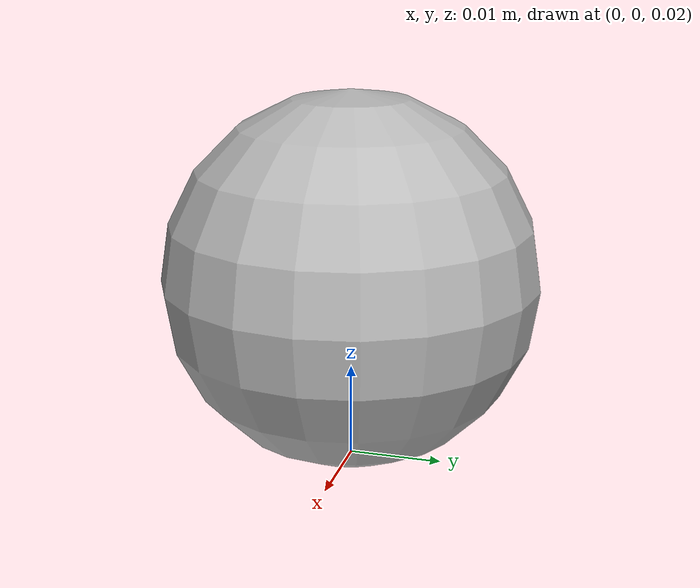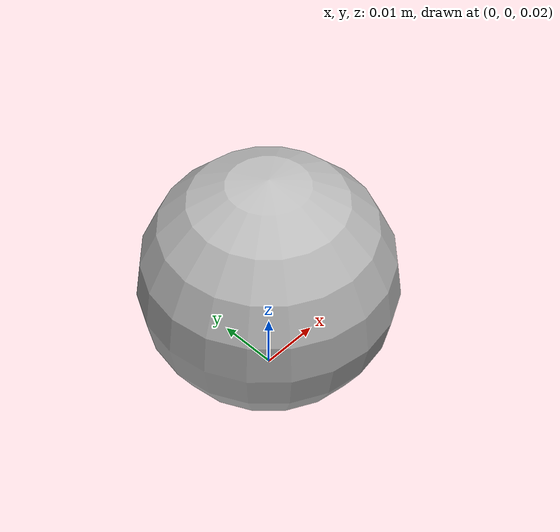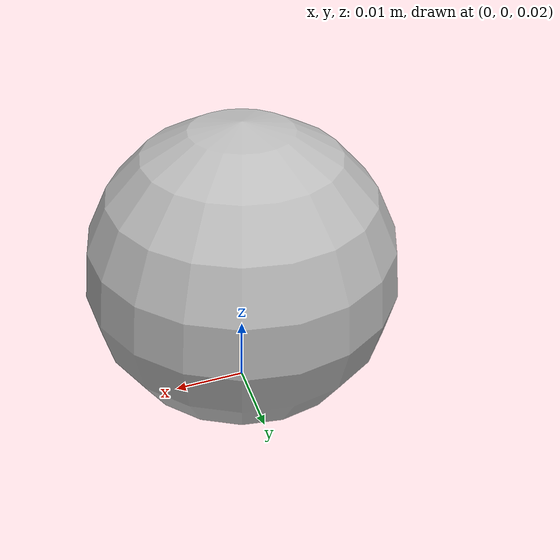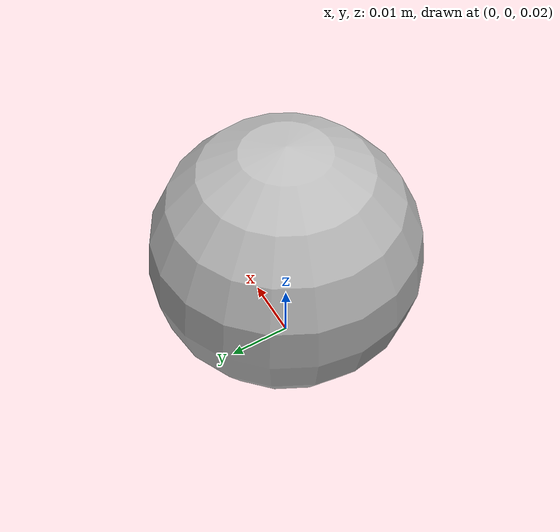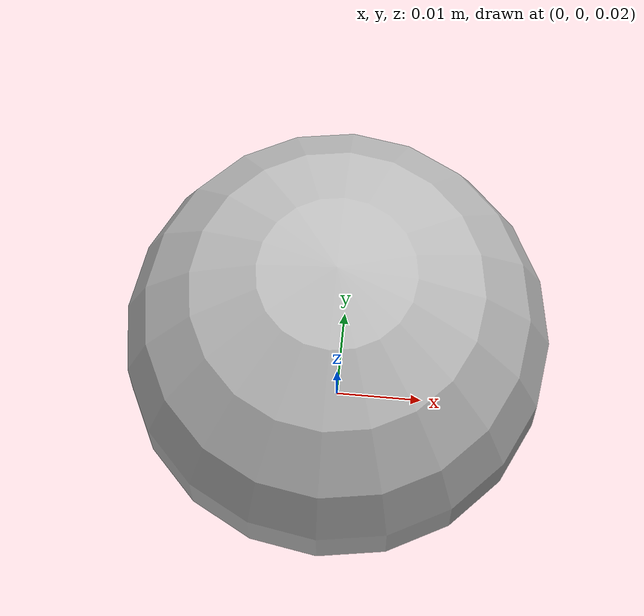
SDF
<?xml version="1.0" ?>
<sdf version="1.6">
  <model name="bullet">
    <pose>0 0 0.02 0 0 0</pose>
    <static>true</static>
    <link name="link">
      <collision name="collision">
        <geometry>
          <sphere>
            <radius>0.02</radius>
          </sphere>
        </geometry>
      </collision>

      <visual name="visual">
        <pose>0 0 0.02 0 0 0</pose>
	<geometry>
          <sphere>
            <radius>0.02</radius>
          </sphere>
        </geometry>
      </visual>
    </link>
  </model>
</sdf>
